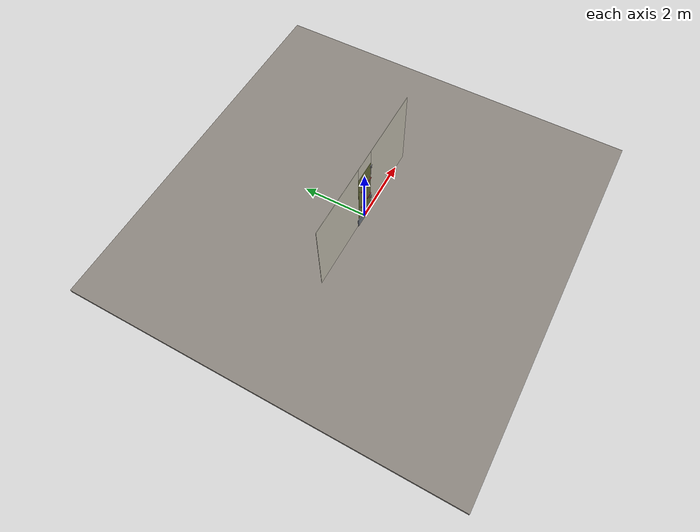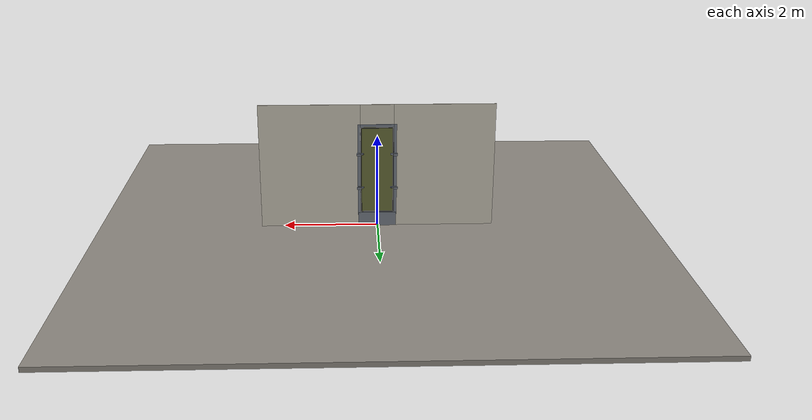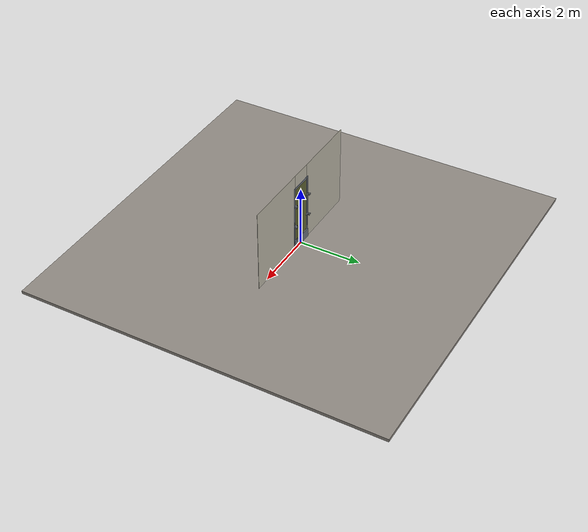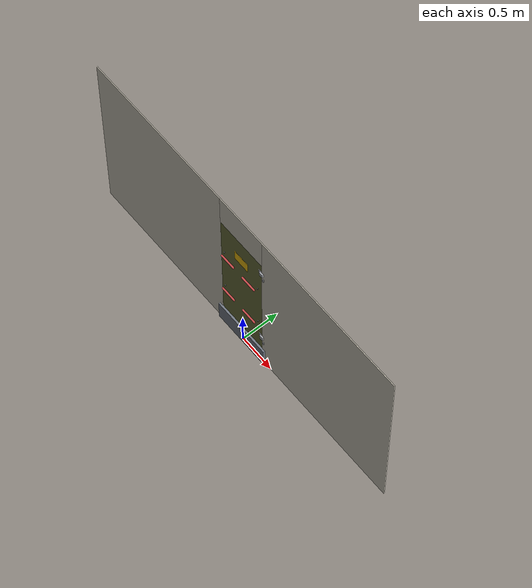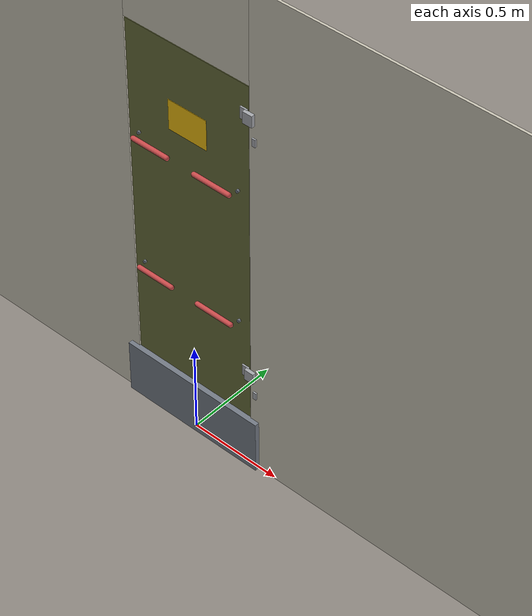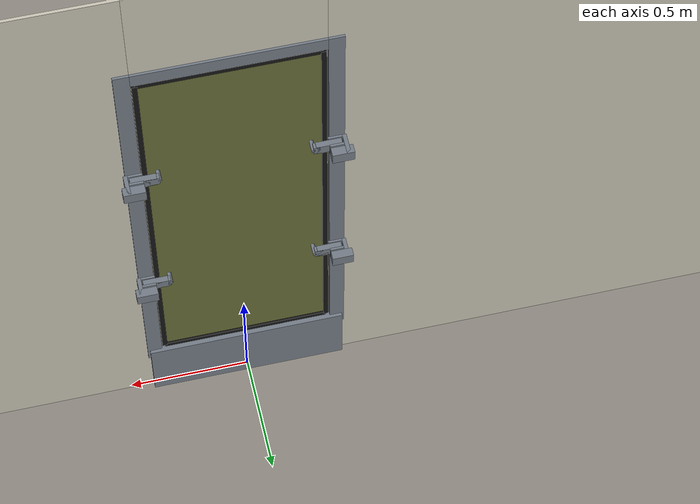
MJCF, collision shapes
<?xml version="1.0" ?>
<mujoco model="db0898_ship_watertight_full">
  <compiler angle="radian" meshdir="../../hardware" texturedir="../../textures" autolimits="true" inertiafromgeom="false"/>
  <option timestep="0.002" integrator="implicitfast" cone="elliptic" impratio="10" noslip_iterations="3">
    <flag multiccd="enable"/>
  </option>
  <size memory="16M"/>
  <default>
    <geom condim="4" solref="0.005 1" solimp="0.95 0.99 0.001"/>
    <joint solreflimit="0.005 1" solimplimit="0.95 0.99 0.001"/>
    <tendon solreflimit="0.005 1"/>
    <equality solref="0.002 1"/>
  </default>
  <visual>
    <headlight ambient="0.4 0.4 0.4" diffuse="0.7 0.7 0.7" specular="0.2 0.2 0.2"/>
    <quality shadowsize="4096"/>
    <map znear="0.01" zfar="60"/>
  </visual>
  <asset>
    <mesh name="hinge_aa6f1f959a" file="hinge_aa6f1f959a.obj"/>
    <mesh name="hinge_jamb_5a3d6f5c54" file="hinge_jamb_5a3d6f5c54.obj"/>
    <mesh name="lever_88a39579f3" file="lever_88a39579f3.obj"/>
    <material name="mat_floor" rgba="0.55 0.53 0.5 1" specular="0.2" shininess="0.15" reflectance="0"/>
    <material name="mat_wall" rgba="0.78 0.76 0.7 1" specular="0.2" shininess="0.1" reflectance="0"/>
    <material name="mat_leaf" rgba="0.4 0.42 0.22 1" specular="0.23" shininess="0.32" reflectance="0.02"/>
    <material name="mat_frame" rgba="0.45 0.48 0.52 1" specular="0.32" shininess="0.6" reflectance="0.08"/>
    <material name="mat_gasket" rgba="0.08 0.08 0.08 1" specular="0.2" shininess="0.1" reflectance="0"/>
    <material name="mat_op_steel_painted" rgba="0.45 0.48 0.52 1" specular="0.32" shininess="0.6" reflectance="0.08"/>
    <material name="mat_hinge" rgba="0.65 0.66 0.68 1" specular="0.74" shininess="0.5" reflectance="0.36"/>
    <material name="mat_placard" rgba="0.95 0.75 0.05 1" specular="0.2" shininess="0.5" reflectance="0"/>
    <texture name="skybox" type="skybox" builtin="gradient" rgb1="0.6 0.7 0.85" rgb2="0.9 0.92 0.95" width="256" height="256"/>
  </asset>
  <worldbody>
    <light name="sun" pos="1.5 -2.5 4" dir="-0.3 0.5 -0.8" directional="true" diffuse="0.8 0.8 0.8" specular="0.3 0.3 0.3" castshadow="true"/>
    <light name="fill" pos="-1.5 2.5 3" dir="0.3 -0.5 -0.7" directional="true" diffuse="0.35 0.35 0.4" castshadow="false"/>
    <camera name="robot_view" pos="0 -2.415625 1.781375" xyaxes="1 0 0 0 0.26963 0.962964" fovy="52"/>
    <camera name="far_view" pos="0 2.415625 1.781375" xyaxes="-1 0 0 0 -0.26963 0.962964" fovy="52"/>
    <camera name="iso" pos="-1.835875 -2.029125 2.167875" xyaxes="0.741536 -0.670913 0 0.242917 0.268487 0.932151" fovy="46"/>
    <camera name="detail_handle" pos="0.071 -0.854 1.155" xyaxes="0.97561 0.219512 0 -0.070934 0.315262 0.94635" fovy="38"/>
    <geom name="floor" type="box" size="6 6 0.05" pos="0 0 -0.05" material="mat_floor" group="0" contype="1" conaffinity="1" friction="0.8 0.005 0.0001" density="2400"/>
    <geom name="wall_left" type="box" size="1.0725 0.006 1.35" pos="-1.4275 0 1.35" material="mat_wall" group="0" contype="1" conaffinity="1" friction="0.6 0.005 0.0001" density="800"/>
    <geom name="wall_right" type="box" size="1.0725 0.006 1.35" pos="1.4275 0 1.35" material="mat_wall" group="0" contype="1" conaffinity="1" friction="0.6 0.005 0.0001" density="800"/>
    <geom name="wall_header" type="box" size="0.355 0.006 0.245" pos="0 0 2.455" material="mat_wall" group="0" contype="1" conaffinity="1" friction="0.6 0.005 0.0001" density="800"/>
    <geom name="flange_l" type="box" size="0.03 0.006 1.015" pos="-0.385 0.01 1.255" material="mat_frame" group="0" contype="1" conaffinity="1" friction="0.6 0.005 0.0001" solref="0.02 1" density="7850"/>
    <geom name="flange_r" type="box" size="0.03 0.006 1.015" pos="0.385 0.01 1.255" material="mat_frame" group="0" contype="1" conaffinity="1" friction="0.6 0.005 0.0001" solref="0.02 1" density="7850"/>
    <geom name="flange_t" type="box" size="0.355 0.006 0.03" pos="0 0.01 2.24" material="mat_frame" group="0" contype="1" conaffinity="1" friction="0.6 0.005 0.0001" solref="0.02 1" density="7850"/>
    <geom name="flange_b" type="box" size="0.355 0.006 0.03" pos="0 0.01 0.27" material="mat_frame" group="0" contype="1" conaffinity="1" friction="0.6 0.005 0.0001" solref="0.02 1" density="7850"/>
    <geom name="coaming" type="box" size="0.405 0.03 0.15" pos="0 0 0.15" material="mat_frame" group="0" contype="1" conaffinity="1" friction="0.6 0.005 0.0001" density="7850"/>
    <geom name="cleat_0" type="box" size="0.0275 0.005 0.025" pos="-0.3765 0.0205 0.875" material="mat_frame" group="0" contype="1" conaffinity="1" friction="0.6 0.005 0.0001" density="7850"/>
    <geom name="cleat_0_outer" type="box" size="0.0275 0.005 0.025" pos="-0.3765 0.0555 0.875" material="mat_frame" group="0" contype="1" conaffinity="1" friction="0.6 0.005 0.0001" density="7850"/>
    <geom name="cleat_0_base" type="box" size="0.0425 0.018 0.025" pos="-0.3915 0.084 0.875" material="mat_frame" group="0" contype="1" conaffinity="1" friction="0.6 0.005 0.0001" density="7850"/>
    <geom name="cleat_0_bridge" type="box" size="0.008 0.041 0.025" pos="-0.412 0.057 0.875" material="mat_frame" group="0" contype="1" conaffinity="1" friction="0.6 0.005 0.0001" density="7850"/>
    <geom name="cleat_1" type="box" size="0.0275 0.005 0.025" pos="0.3785 0.0205 0.875" material="mat_frame" group="0" contype="1" conaffinity="1" friction="0.6 0.005 0.0001" density="7850"/>
    <geom name="cleat_1_outer" type="box" size="0.0275 0.005 0.025" pos="0.3785 0.0555 0.875" material="mat_frame" group="0" contype="1" conaffinity="1" friction="0.6 0.005 0.0001" density="7850"/>
    <geom name="cleat_1_base" type="box" size="0.0425 0.018 0.025" pos="0.3935 0.084 0.875" material="mat_frame" group="0" contype="1" conaffinity="1" friction="0.6 0.005 0.0001" density="7850"/>
    <geom name="cleat_1_bridge" type="box" size="0.008 0.041 0.025" pos="0.414 0.057 0.875" material="mat_frame" group="0" contype="1" conaffinity="1" friction="0.6 0.005 0.0001" density="7850"/>
    <geom name="cleat_2" type="box" size="0.0275 0.005 0.025" pos="-0.3765 0.0205 1.625" material="mat_frame" group="0" contype="1" conaffinity="1" friction="0.6 0.005 0.0001" density="7850"/>
    <geom name="cleat_2_outer" type="box" size="0.0275 0.005 0.025" pos="-0.3765 0.0555 1.625" material="mat_frame" group="0" contype="1" conaffinity="1" friction="0.6 0.005 0.0001" density="7850"/>
    <geom name="cleat_2_base" type="box" size="0.0425 0.018 0.025" pos="-0.3915 0.084 1.625" material="mat_frame" group="0" contype="1" conaffinity="1" friction="0.6 0.005 0.0001" density="7850"/>
    <geom name="cleat_2_bridge" type="box" size="0.008 0.041 0.025" pos="-0.412 0.057 1.625" material="mat_frame" group="0" contype="1" conaffinity="1" friction="0.6 0.005 0.0001" density="7850"/>
    <geom name="cleat_3" type="box" size="0.0275 0.005 0.025" pos="0.3785 0.0205 1.625" material="mat_frame" group="0" contype="1" conaffinity="1" friction="0.6 0.005 0.0001" density="7850"/>
    <geom name="cleat_3_outer" type="box" size="0.0275 0.005 0.025" pos="0.3785 0.0555 1.625" material="mat_frame" group="0" contype="1" conaffinity="1" friction="0.6 0.005 0.0001" density="7850"/>
    <geom name="cleat_3_base" type="box" size="0.0425 0.018 0.025" pos="0.3935 0.084 1.625" material="mat_frame" group="0" contype="1" conaffinity="1" friction="0.6 0.005 0.0001" density="7850"/>
    <geom name="cleat_3_bridge" type="box" size="0.008 0.041 0.025" pos="0.414 0.057 1.625" material="mat_frame" group="0" contype="1" conaffinity="1" friction="0.6 0.005 0.0001" density="7850"/>
    <geom name="hinge_0_jamb" type="mesh" mesh="hinge_jamb_5a3d6f5c54" pos="0.385 -0.024 0.554" quat="0 0 1 0" material="mat_hinge" group="1" contype="0" conaffinity="0" density="7850"/>
    <geom name="hinge_0_jamb_lug" type="box" size="0.01 0.004 0.02" pos="0.385 -0.01 0.467" material="mat_hinge" group="1" contype="0" conaffinity="0" density="7850"/>
    <geom name="hinge_1_jamb" type="mesh" mesh="hinge_jamb_5a3d6f5c54" pos="0.385 -0.024 2.024" quat="0 0 1 0" material="mat_hinge" group="1" contype="0" conaffinity="0" density="7850"/>
    <geom name="hinge_1_jamb_lug" type="box" size="0.01 0.004 0.02" pos="0.385 -0.01 1.937" material="mat_hinge" group="1" contype="0" conaffinity="0" density="7850"/>
    <site name="approach_point" pos="0 -1.5 0" quat="1 0 0 0" size="0.05" rgba="0.2 0.9 0.2 0.5" group="4"/>
    <site name="goal_point" pos="0 1.5 0" quat="1 0 0 0" size="0.05" rgba="0.2 0.9 0.2 0.5" group="4"/>
    <site name="door_plane_center" pos="0 0 1.255" quat="1 0 0 0" size="0.02" rgba="0.2 0.9 0.2 0.5" group="4"/>
    <body name="leaf" pos="0.355 0 0.3">
      <inertial pos="-0.341611 -0.000623 0.956104" mass="86.685107" quat="0.500917 -0.497993 0.50195 0.499131" diaginertia="3.855823301 26.919002709 30.771211422"/>
      <joint name="leaf_hinge" type="hinge" axis="0 0 1" pos="0.03 -0.024 0" limited="true" range="0 2.356194" solreflimit="0.02 1" damping="0.132388" frictionloss="14.456797" armature="0.02"/>
      <geom name="leaf_slab" type="box" size="0.35 0.004 0.95" pos="-0.354 0 0.954" material="mat_leaf" group="0" contype="1" conaffinity="1" friction="0.4 0.005 0.0001" density="1"/>
      <geom name="gasket_l" type="box" size="0.01 0.004 0.94" pos="-0.014 0.008 0.954" material="mat_gasket" group="1" contype="0" conaffinity="0" density="1100"/>
      <geom name="gasket_r" type="box" size="0.01 0.004 0.94" pos="-0.694 0.008 0.954" material="mat_gasket" group="1" contype="0" conaffinity="0" density="1100"/>
      <geom name="gasket_b" type="box" size="0.34 0.004 0.01" pos="-0.354 0.008 0.014" material="mat_gasket" group="1" contype="0" conaffinity="0" density="1100"/>
      <geom name="gasket_t" type="box" size="0.34 0.004 0.01" pos="-0.354 0.008 1.894" material="mat_gasket" group="1" contype="0" conaffinity="0" density="1100"/>
      <geom name="hinge_0" type="mesh" mesh="hinge_aa6f1f959a" pos="0.03 -0.024 0.254" quat="0 0 1 0" material="mat_hinge" group="1" contype="0" conaffinity="0" density="7850"/>
      <geom name="hinge_0_lug_foot" type="box" size="0.02 0.0045 0.03" pos="-0.026 -0.0085 0.287" material="mat_hinge" group="1" contype="0" conaffinity="0" density="7850"/>
      <geom name="hinge_0_lug" type="box" size="0.026 0.0095 0.03" pos="0.01 -0.0205 0.287" material="mat_hinge" group="1" contype="0" conaffinity="0" density="7850"/>
      <geom name="hinge_1" type="mesh" mesh="hinge_aa6f1f959a" pos="0.03 -0.024 1.724" quat="0 0 1 0" material="mat_hinge" group="1" contype="0" conaffinity="0" density="7850"/>
      <geom name="hinge_1_lug_foot" type="box" size="0.02 0.0045 0.03" pos="-0.026 -0.0085 1.757" material="mat_hinge" group="1" contype="0" conaffinity="0" density="7850"/>
      <geom name="hinge_1_lug" type="box" size="0.026 0.0095 0.03" pos="0.01 -0.0205 1.757" material="mat_hinge" group="1" contype="0" conaffinity="0" density="7850"/>
      <geom name="warning_placard" type="box" size="0.11 0.001 0.08" pos="-0.354 -0.005 1.52" material="mat_placard" group="2" contype="0" conaffinity="0" density="1000"/>
      <body name="dog_0" pos="-0.644 0 0.575">
        <inertial pos="0.052877 -0.02388 0" mass="3.659723" quat="0.180462 0 0 0.983582" diaginertia="0.002822767 0.039604522 0.041849602"/>
        <joint name="dog_0_hinge" type="hinge" axis="0 -1 0" limited="true" range="0 1.5708" damping="0.5" frictionloss="1.5" armature="0.005"/>
        <geom name="dog_0_lever" type="mesh" mesh="lever_88a39579f3" pos="0 -0.013 0" quat="0 0 -0.707107 0.707107" material="mat_op_steel_painted" group="1" contype="0" conaffinity="0" density="7800"/>
        <geom name="dog_0_lever_col" type="capsule" size="0.0125 0.1" pos="0.11 -0.054 0" quat="0.707107 0 0.707107 0" material="mat_op_steel_painted" group="3" contype="1" conaffinity="1" rgba="0.8 0.3 0.3 0.25" friction="0.7 0.01 0.0001" density="7800"/>
        <geom name="dog_0_wedge" type="box" size="0.05 0.012 0.02" pos="-0.06 0.038 0" material="mat_op_steel_painted" group="0" contype="1" conaffinity="1" friction="0.6 0.005 0.0001" density="7800"/>
        <geom name="dog_0_shaft" type="cylinder" size="0.008 0.033" pos="0 0.017 0" quat="0.707107 -0.707107 0 0" material="mat_op_steel_painted" group="1" contype="0" conaffinity="0" density="7800"/>
        <geom name="dog_0_crank" type="box" size="0.026 0.012 0.018" pos="-0.026 0.038 0" material="mat_op_steel_painted" group="1" contype="0" conaffinity="0" density="7800"/>
        <site name="dog_0_grip" pos="0.18 -0.054 0" quat="1 0 0 0" size="0.012" rgba="0.2 0.9 0.2 0.5" group="4"/>
      </body>
      <body name="dog_1" pos="-0.064 0 0.575">
        <inertial pos="-0.052877 -0.02388 0" mass="3.659723" quat="-0.180462 0 0 0.983582" diaginertia="0.002822767 0.039604522 0.041849602"/>
        <joint name="dog_1_hinge" type="hinge" axis="0 1 0" limited="true" range="0 1.5708" damping="0.5" frictionloss="1.5" armature="0.005"/>
        <geom name="dog_1_lever" type="mesh" mesh="lever_88a39579f3" pos="0 -0.013 0" quat="0.707107 0.707107 0 0" material="mat_op_steel_painted" group="1" contype="0" conaffinity="0" density="7800"/>
        <geom name="dog_1_lever_col" type="capsule" size="0.0125 0.1" pos="-0.11 -0.054 0" quat="0.707107 0 0.707107 0" material="mat_op_steel_painted" group="3" contype="1" conaffinity="1" rgba="0.8 0.3 0.3 0.25" friction="0.7 0.01 0.0001" density="7800"/>
        <geom name="dog_1_wedge" type="box" size="0.05 0.012 0.02" pos="0.06 0.038 0" material="mat_op_steel_painted" group="0" contype="1" conaffinity="1" friction="0.6 0.005 0.0001" density="7800"/>
        <geom name="dog_1_shaft" type="cylinder" size="0.008 0.033" pos="0 0.017 0" quat="0.707107 -0.707107 0 0" material="mat_op_steel_painted" group="1" contype="0" conaffinity="0" density="7800"/>
        <geom name="dog_1_crank" type="box" size="0.026 0.012 0.018" pos="0.026 0.038 0" material="mat_op_steel_painted" group="1" contype="0" conaffinity="0" density="7800"/>
        <site name="dog_1_grip" pos="-0.18 -0.054 0" quat="1 0 0 0" size="0.012" rgba="0.2 0.9 0.2 0.5" group="4"/>
      </body>
      <body name="dog_2" pos="-0.644 0 1.325">
        <inertial pos="0.052877 -0.02388 0" mass="3.659723" quat="0.180462 0 0 0.983582" diaginertia="0.002822767 0.039604522 0.041849602"/>
        <joint name="dog_2_hinge" type="hinge" axis="0 -1 0" limited="true" range="0 1.5708" damping="0.5" frictionloss="1.5" armature="0.005"/>
        <geom name="dog_2_lever" type="mesh" mesh="lever_88a39579f3" pos="0 -0.013 0" quat="0 0 -0.707107 0.707107" material="mat_op_steel_painted" group="1" contype="0" conaffinity="0" density="7800"/>
        <geom name="dog_2_lever_col" type="capsule" size="0.0125 0.1" pos="0.11 -0.054 0" quat="0.707107 0 0.707107 0" material="mat_op_steel_painted" group="3" contype="1" conaffinity="1" rgba="0.8 0.3 0.3 0.25" friction="0.7 0.01 0.0001" density="7800"/>
        <geom name="dog_2_wedge" type="box" size="0.05 0.012 0.02" pos="-0.06 0.038 0" material="mat_op_steel_painted" group="0" contype="1" conaffinity="1" friction="0.6 0.005 0.0001" density="7800"/>
        <geom name="dog_2_shaft" type="cylinder" size="0.008 0.033" pos="0 0.017 0" quat="0.707107 -0.707107 0 0" material="mat_op_steel_painted" group="1" contype="0" conaffinity="0" density="7800"/>
        <geom name="dog_2_crank" type="box" size="0.026 0.012 0.018" pos="-0.026 0.038 0" material="mat_op_steel_painted" group="1" contype="0" conaffinity="0" density="7800"/>
        <site name="dog_2_grip" pos="0.18 -0.054 0" quat="1 0 0 0" size="0.012" rgba="0.2 0.9 0.2 0.5" group="4"/>
      </body>
      <body name="dog_3" pos="-0.064 0 1.325">
        <inertial pos="-0.052877 -0.02388 0" mass="3.659723" quat="-0.180462 0 0 0.983582" diaginertia="0.002822767 0.039604522 0.041849602"/>
        <joint name="dog_3_hinge" type="hinge" axis="0 1 0" limited="true" range="0 1.5708" damping="0.5" frictionloss="1.5" armature="0.005"/>
        <geom name="dog_3_lever" type="mesh" mesh="lever_88a39579f3" pos="0 -0.013 0" quat="0.707107 0.707107 0 0" material="mat_op_steel_painted" group="1" contype="0" conaffinity="0" density="7800"/>
        <geom name="dog_3_lever_col" type="capsule" size="0.0125 0.1" pos="-0.11 -0.054 0" quat="0.707107 0 0.707107 0" material="mat_op_steel_painted" group="3" contype="1" conaffinity="1" rgba="0.8 0.3 0.3 0.25" friction="0.7 0.01 0.0001" density="7800"/>
        <geom name="dog_3_wedge" type="box" size="0.05 0.012 0.02" pos="0.06 0.038 0" material="mat_op_steel_painted" group="0" contype="1" conaffinity="1" friction="0.6 0.005 0.0001" density="7800"/>
        <geom name="dog_3_shaft" type="cylinder" size="0.008 0.033" pos="0 0.017 0" quat="0.707107 -0.707107 0 0" material="mat_op_steel_painted" group="1" contype="0" conaffinity="0" density="7800"/>
        <geom name="dog_3_crank" type="box" size="0.026 0.012 0.018" pos="0.026 0.038 0" material="mat_op_steel_painted" group="1" contype="0" conaffinity="0" density="7800"/>
        <site name="dog_3_grip" pos="-0.18 -0.054 0" quat="1 0 0 0" size="0.012" rgba="0.2 0.9 0.2 0.5" group="4"/>
      </body>
    </body>
  </worldbody>
  <sensor>
    <jointpos name="leaf_hinge_pos" joint="leaf_hinge"/>
    <jointvel name="leaf_hinge_vel" joint="leaf_hinge"/>
    <jointpos name="dog_0_hinge_pos" joint="dog_0_hinge"/>
    <jointvel name="dog_0_hinge_vel" joint="dog_0_hinge"/>
    <jointpos name="dog_1_hinge_pos" joint="dog_1_hinge"/>
    <jointvel name="dog_1_hinge_vel" joint="dog_1_hinge"/>
    <jointpos name="dog_2_hinge_pos" joint="dog_2_hinge"/>
    <jointvel name="dog_2_hinge_vel" joint="dog_2_hinge"/>
    <jointpos name="dog_3_hinge_pos" joint="dog_3_hinge"/>
    <jointvel name="dog_3_hinge_vel" joint="dog_3_hinge"/>
  </sensor>
</mujoco>
